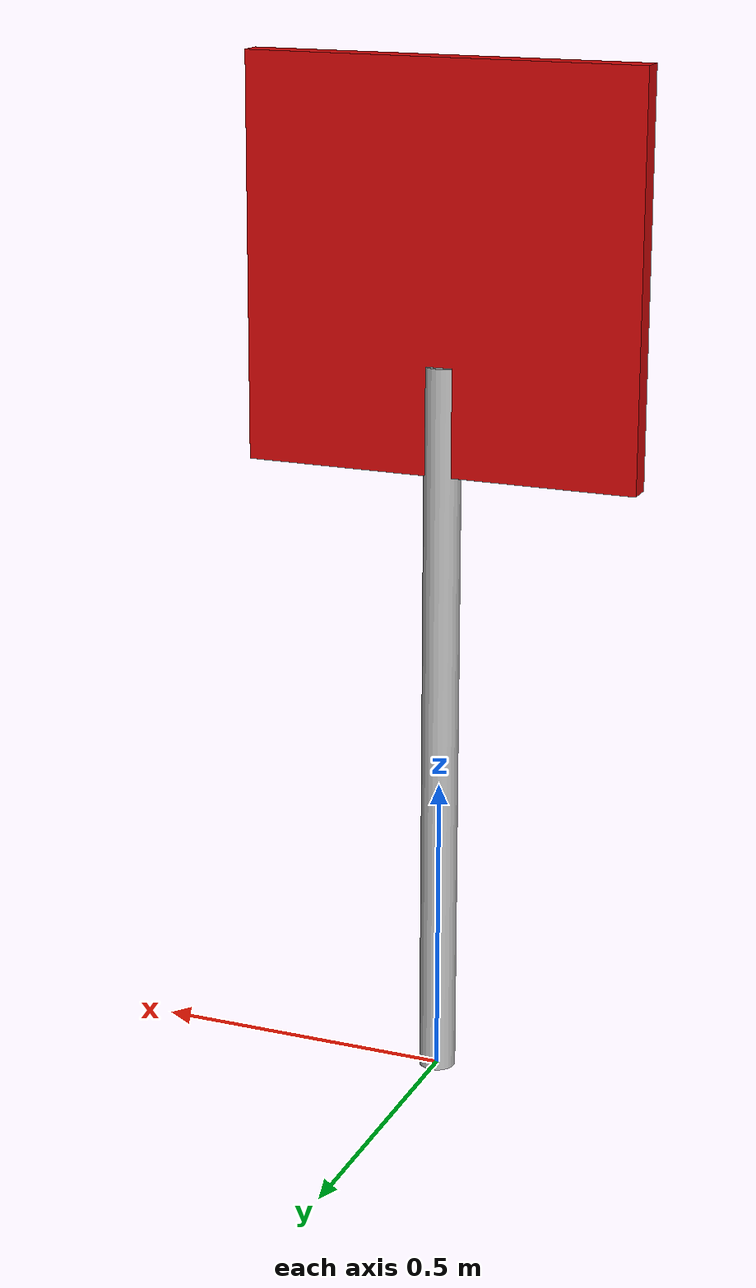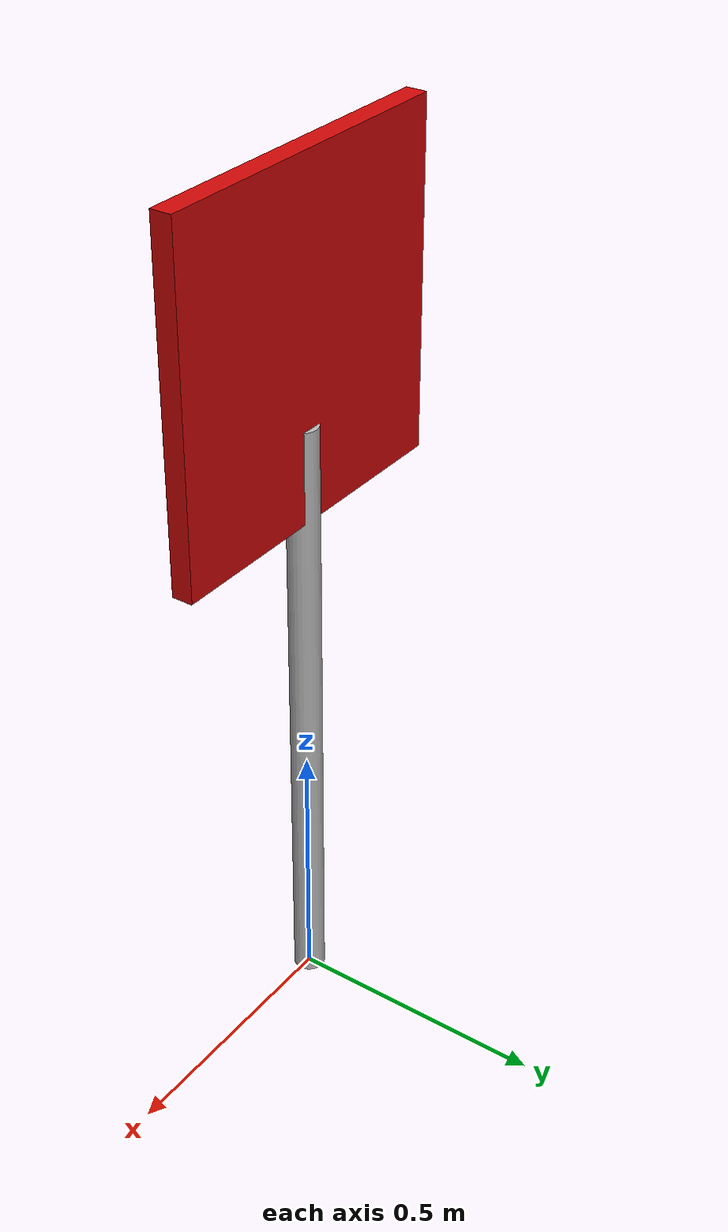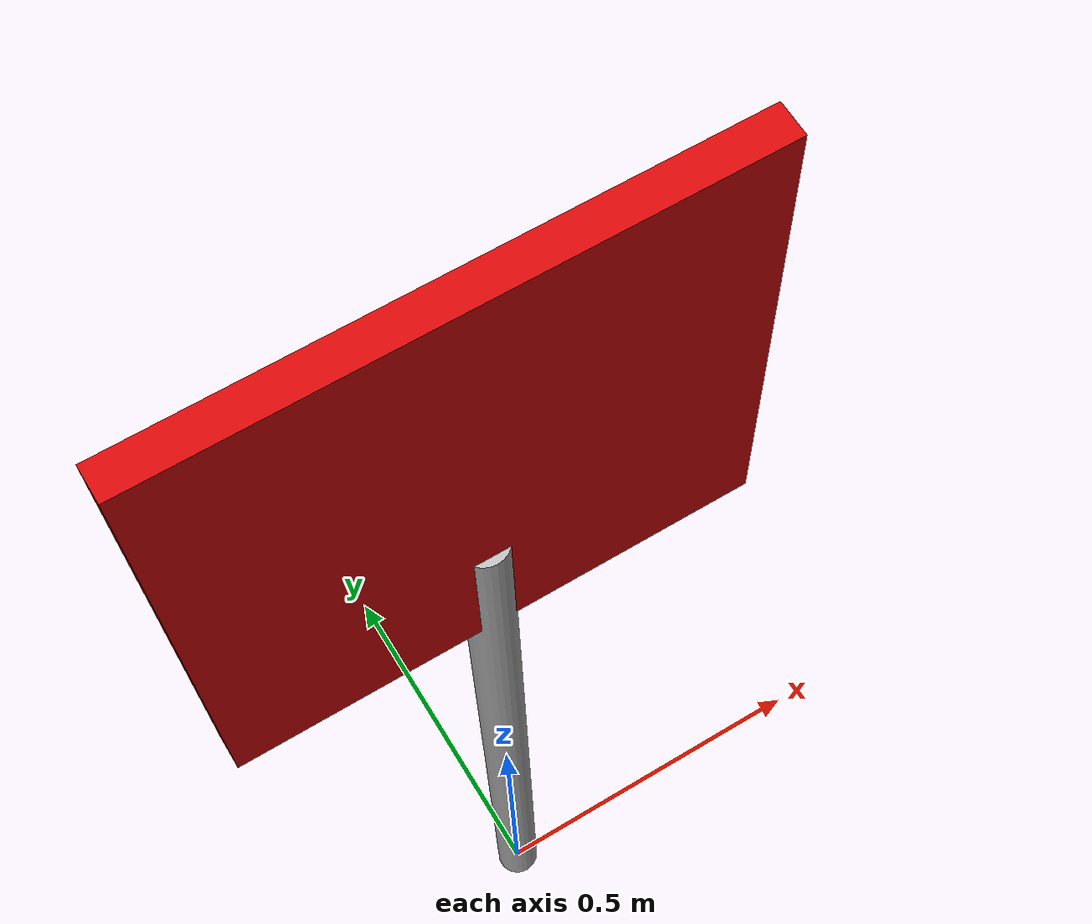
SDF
<?xml version="1.0"?>
<sdf version="1.9">
  <model name="bv_stop_sign">
    <static>true</static>
    <link name="sign">
      <collision name="pole_collision">
        <pose>0 0 0.6 0 0 0</pose>
        <geometry>
          <cylinder><radius>0.03</radius><length>1.2</length></cylinder>
        </geometry>
      </collision>
      <collision name="sign_collision">
        <pose>0 0 1.35 0 0 0</pose>
        <geometry>
          <box><size>0.65 0.04 0.65</size></box>
        </geometry>
      </collision>
      <visual name="pole_visual">
        <pose>0 0 0.6 0 0 0</pose>
        <geometry>
          <cylinder><radius>0.03</radius><length>1.2</length></cylinder>
        </geometry>
      </visual>
      <visual name="sign_visual">
        <pose>0 0 1.35 0 0 0</pose>
        <geometry>
          <box><size>0.65 0.04 0.65</size></box>
        </geometry>
        <material>
          <diffuse>0.82 0.03 0.03 1</diffuse>
        </material>
      </visual>
    </link>
  </model>
</sdf>
